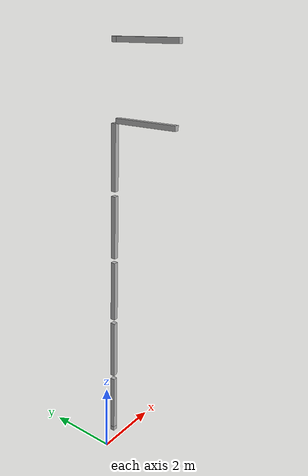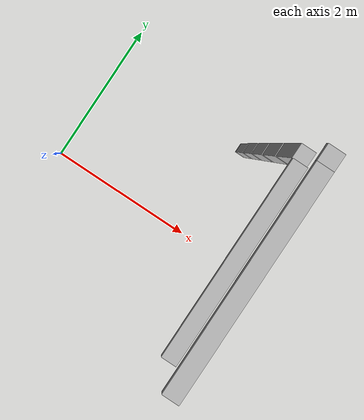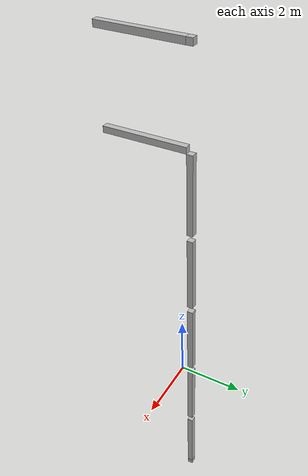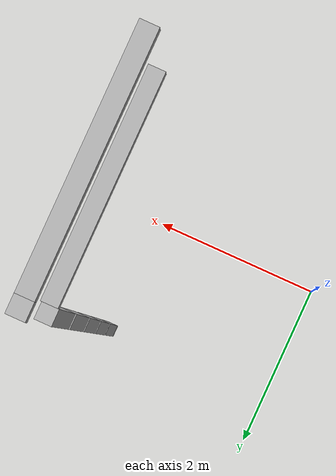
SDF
<sdf version="1.7">
 <world name="default">
  <model name="orthogonal_747_2.000.15_TS">
   <static>1</static>
   <link name="u_link_0_3_4">
    <inertial>
     <mass>1</mass>
     <inertia>
      <ixx>0.166667</ixx>
      <ixy>0</ixy>
      <ixz>0</ixz>
      <iyy>0.166667</iyy>
      <iyz>0</iyz>
      <izz>0.166667</izz>
     </inertia>
    </inertial>
    <pose>8.6 6.45 1.075 0 -0 0</pose>
    <visual name="visual_0">
     <laser_retro>582</laser_retro>
     <geometry><box><size>0.15 1e-06 0.15</size></box></geometry>
     <material>
      <script><name>Gazebo/Grey</name><uri>file://media/materials/scripts/gazebo.material</uri></script>
      <shader type="pixel"><normal_map>__default__</normal_map></shader>
      <ambient>0.678 0.498 0.659 1</ambient>
      <diffuse>0.7 0.7 0.7 1</diffuse>
      <specular>0.01 0.01 0.01 1</specular>
      <emissive>0 0 0 1</emissive>
     </material>
     <pose>0 -0.075 0 0 -0 0</pose>
     <transparency>1</transparency>
    </visual>
    <visual name="visual_1">
     <laser_retro>583</laser_retro>
     <geometry><box><size>0.15 1e-06 0.15</size></box></geometry>
     <material>
      <script><name>Gazebo/Grey</name><uri>file://media/materials/scripts/gazebo.material</uri></script>
      <shader type="pixel"><normal_map>__default__</normal_map></shader>
      <ambient>0.447 0.624 0.812 1</ambient>
      <diffuse>0.7 0.7 0.7 1</diffuse>
      <specular>0.01 0.01 0.01 1</specular>
      <emissive>0 0 0 1</emissive>
     </material>
     <pose>0 0.075 0 0 -0 0</pose>
     <transparency>1</transparency>
    </visual>
    <visual name="visual_2">
     <laser_retro>584</laser_retro>
     <geometry><box><size>0.15 0.15 1e-06</size></box></geometry>
     <material>
      <script><name>Gazebo/Grey</name><uri>file://media/materials/scripts/gazebo.material</uri></script>
      <shader type="pixel"><normal_map>__default__</normal_map></shader>
      <ambient>0.988 0.686 0.243 1</ambient>
      <diffuse>0.7 0.7 0.7 1</diffuse>
      <specular>0.01 0.01 0.01 1</specular>
      <emissive>0 0 0 1</emissive>
     </material>
     <pose>0 0 -0.075 0 -0 0</pose>
     <transparency>1</transparency>
    </visual>
    <visual name="visual_3">
     <laser_retro>585</laser_retro>
     <geometry><box><size>1e-06 0.15 0.15</size></box></geometry>
     <material>
      <script><name>Gazebo/Grey</name><uri>file://media/materials/scripts/gazebo.material</uri></script>
      <shader type="pixel"><normal_map>__default__</normal_map></shader>
      <ambient>0.988 0.914 0.31 1</ambient>
      <diffuse>0.7 0.7 0.7 1</diffuse>
      <specular>0.01 0.01 0.01 1</specular>
      <emissive>0 0 0 1</emissive>
     </material>
     <pose>0.075 0 0 0 -0 0</pose>
     <transparency>1</transparency>
    </visual>
    <visual name="visual_4">
     <laser_retro>586</laser_retro>
     <geometry><box><size>0.15 0.15 1e-06</size></box></geometry>
     <material>
      <script><name>Gazebo/Grey</name><uri>file://media/materials/scripts/gazebo.material</uri></script>
      <shader type="pixel"><normal_map>__default__</normal_map></shader>
      <ambient>0.937 0.161 0.161 1</ambient>
      <diffuse>0.7 0.7 0.7 1</diffuse>
      <specular>0.01 0.01 0.01 1</specular>
      <emissive>0 0 0 1</emissive>
     </material>
     <pose>0 0 0.075 0 -0 0</pose>
     <transparency>1</transparency>
    </visual>
    <visual name="visual_5">
     <laser_retro>587</laser_retro>
     <geometry><box><size>1e-06 0.15 0.15</size></box></geometry>
     <material>
      <script><name>Gazebo/Grey</name><uri>file://media/materials/scripts/gazebo.material</uri></script>
      <shader type="pixel"><normal_map>__default__</normal_map></shader>
      <ambient>0.541 0.886 0.204 1</ambient>
      <diffuse>0.7 0.7 0.7 1</diffuse>
      <specular>0.01 0.01 0.01 1</specular>
      <emissive>0 0 0 1</emissive>
     </material>
     <pose>-0.075 0 0 0 -0 0</pose>
     <transparency>1</transparency>
    </visual>
    <visual name="visual_texture">
     <geometry><box><size>0.149985 0.149985 0.149985</size></box></geometry>
     <material>
      <script>
       <uri>model://BASE_MODELS/simple_block_v2_textured/materials/scripts</uri>
       <uri>model://BASE_MODELS/simple_block_v2_textured/materials/textures</uri>
       <name>metal</name>
      </script>
     </material>
     <laser_retro>588</laser_retro>
    </visual>
    <collision name="collision">
     <geometry><box><size>0.15 0.15 0.15</size></box></geometry>
     <surface>
      <friction>
       <ode><mu>1</mu><mu2>1</mu2><fdir1>0 0 0</fdir1><slip1>0</slip1><slip2>0</slip2></ode>
       <torsional>
        <coefficient>1</coefficient>
        <patch_radius>0</patch_radius>
        <surface_radius>0</surface_radius>
        <use_patch_radius>1</use_patch_radius>
        <ode><slip>0</slip></ode>
       </torsional>
      </friction>
      <bounce><restitution_coefficient>0</restitution_coefficient><threshold>1e+06</threshold></bounce>
      <contact>
       <collide_without_contact>0</collide_without_contact>
       <collide_without_contact_bitmask>1</collide_without_contact_bitmask>
       <collide_bitmask>1</collide_bitmask>
       <ode>
        <soft_cfm>0</soft_cfm>
        <soft_erp>0.2</soft_erp>
        <kp>1e+13</kp>
        <kd>1</kd>
        <max_vel>0.01</max_vel>
        <min_depth>0</min_depth>
       </ode>
       <bullet>
        <split_impulse>1</split_impulse>
        <split_impulse_penetration_threshold>-0.01</split_impulse_penetration_threshold>
        <soft_cfm>0</soft_cfm>
        <soft_erp>0.2</soft_erp>
        <kp>1e+13</kp>
        <kd>1</kd>
       </bullet>
      </contact>
     </surface>
    </collision>
   </link>
   <link name="z_link_1_3_4">
    <inertial>
     <mass>1</mass>
     <inertia>
      <ixx>0.166667</ixx>
      <ixy>0</ixy>
      <ixz>0</ixz>
      <iyy>0.166667</iyy>
      <iyz>0</iyz>
      <izz>0.166667</izz>
     </inertia>
    </inertial>
    <pose>8.6 6.45 2.15 0 -0 0</pose>
    <visual name="visual_0">
     <laser_retro>1422</laser_retro>
     <geometry><box><size>0.15 1e-06 2</size></box></geometry>
     <material>
      <script><name>Gazebo/Grey</name><uri>file://media/materials/scripts/gazebo.material</uri></script>
      <shader type="pixel"><normal_map>__default__</normal_map></shader>
      <ambient>0.678 0.498 0.659 1</ambient>
      <diffuse>0.7 0.7 0.7 1</diffuse>
      <specular>0.01 0.01 0.01 1</specular>
      <emissive>0 0 0 1</emissive>
     </material>
     <pose>0 -0.075 0 0 -0 0</pose>
     <transparency>1</transparency>
    </visual>
    <visual name="visual_1">
     <laser_retro>1423</laser_retro>
     <geometry><box><size>0.15 1e-06 2</size></box></geometry>
     <material>
      <script><name>Gazebo/Grey</name><uri>file://media/materials/scripts/gazebo.material</uri></script>
      <shader type="pixel"><normal_map>__default__</normal_map></shader>
      <ambient>0.447 0.624 0.812 1</ambient>
      <diffuse>0.7 0.7 0.7 1</diffuse>
      <specular>0.01 0.01 0.01 1</specular>
      <emissive>0 0 0 1</emissive>
     </material>
     <pose>0 0.075 0 0 -0 0</pose>
     <transparency>1</transparency>
    </visual>
    <visual name="visual_2">
     <laser_retro>1424</laser_retro>
     <geometry><box><size>0.15 0.15 1e-06</size></box></geometry>
     <material>
      <script><name>Gazebo/Grey</name><uri>file://media/materials/scripts/gazebo.material</uri></script>
      <shader type="pixel"><normal_map>__default__</normal_map></shader>
      <ambient>0.988 0.686 0.243 1</ambient>
      <diffuse>0.7 0.7 0.7 1</diffuse>
      <specular>0.01 0.01 0.01 1</specular>
      <emissive>0 0 0 1</emissive>
     </material>
     <pose>0 0 -1 0 -0 0</pose>
     <transparency>1</transparency>
    </visual>
    <visual name="visual_3">
     <laser_retro>1425</laser_retro>
     <geometry><box><size>1e-06 0.15 2</size></box></geometry>
     <material>
      <script><name>Gazebo/Grey</name><uri>file://media/materials/scripts/gazebo.material</uri></script>
      <shader type="pixel"><normal_map>__default__</normal_map></shader>
      <ambient>0.988 0.914 0.31 1</ambient>
      <diffuse>0.7 0.7 0.7 1</diffuse>
      <specular>0.01 0.01 0.01 1</specular>
      <emissive>0 0 0 1</emissive>
     </material>
     <pose>0.075 0 0 0 -0 0</pose>
     <transparency>1</transparency>
    </visual>
    <visual name="visual_4">
     <laser_retro>1426</laser_retro>
     <geometry><box><size>0.15 0.15 1e-06</size></box></geometry>
     <material>
      <script><name>Gazebo/Grey</name><uri>file://media/materials/scripts/gazebo.material</uri></script>
      <shader type="pixel"><normal_map>__default__</normal_map></shader>
      <ambient>0.937 0.161 0.161 1</ambient>
      <diffuse>0.7 0.7 0.7 1</diffuse>
      <specular>0.01 0.01 0.01 1</specular>
      <emissive>0 0 0 1</emissive>
     </material>
     <pose>0 0 1 0 -0 0</pose>
     <transparency>1</transparency>
    </visual>
    <visual name="visual_5">
     <laser_retro>1427</laser_retro>
     <geometry><box><size>1e-06 0.15 2</size></box></geometry>
     <material>
      <script><name>Gazebo/Grey</name><uri>file://media/materials/scripts/gazebo.material</uri></script>
      <shader type="pixel"><normal_map>__default__</normal_map></shader>
      <ambient>0.541 0.886 0.204 1</ambient>
      <diffuse>0.7 0.7 0.7 1</diffuse>
      <specular>0.01 0.01 0.01 1</specular>
      <emissive>0 0 0 1</emissive>
     </material>
     <pose>-0.075 0 0 0 -0 0</pose>
     <transparency>1</transparency>
    </visual>
    <visual name="visual_texture">
     <geometry><box><size>0.149985 0.149985 1.9998</size></box></geometry>
     <material>
      <script>
       <uri>model://BASE_MODELS/simple_block_v2_textured/materials/scripts</uri>
       <uri>model://BASE_MODELS/simple_block_v2_textured/materials/textures</uri>
       <name>metal</name>
      </script>
     </material>
     <laser_retro>1428</laser_retro>
    </visual>
    <collision name="collision">
     <geometry><box><size>0.15 0.15 2</size></box></geometry>
     <surface>
      <friction>
       <ode><mu>1</mu><mu2>1</mu2><fdir1>0 0 0</fdir1><slip1>0</slip1><slip2>0</slip2></ode>
       <torsional>
        <coefficient>1</coefficient>
        <patch_radius>0</patch_radius>
        <surface_radius>0</surface_radius>
        <use_patch_radius>1</use_patch_radius>
        <ode><slip>0</slip></ode>
       </torsional>
      </friction>
      <bounce><restitution_coefficient>0</restitution_coefficient><threshold>1e+06</threshold></bounce>
      <contact>
       <collide_without_contact>0</collide_without_contact>
       <collide_without_contact_bitmask>1</collide_without_contact_bitmask>
       <collide_bitmask>1</collide_bitmask>
       <ode>
        <soft_cfm>0</soft_cfm>
        <soft_erp>0.2</soft_erp>
        <kp>1e+13</kp>
        <kd>1</kd>
        <max_vel>0.01</max_vel>
        <min_depth>0</min_depth>
       </ode>
       <bullet>
        <split_impulse>1</split_impulse>
        <split_impulse_penetration_threshold>-0.01</split_impulse_penetration_threshold>
        <soft_cfm>0</soft_cfm>
        <soft_erp>0.2</soft_erp>
        <kp>1e+13</kp>
        <kd>1</kd>
       </bullet>
      </contact>
     </surface>
    </collision>
   </link>
   <link name="z_link_2_3_4">
    <inertial>
     <mass>1</mass>
     <inertia>
      <ixx>0.166667</ixx>
      <ixy>0</ixy>
      <ixz>0</ixz>
      <iyy>0.166667</iyy>
      <iyz>0</iyz>
      <izz>0.166667</izz>
     </inertia>
    </inertial>
    <pose>8.6 6.45 4.3 0 -0 0</pose>
    <visual name="visual_0">
     <laser_retro>2325</laser_retro>
     <geometry><box><size>0.15 1e-06 2</size></box></geometry>
     <material>
      <script><name>Gazebo/Grey</name><uri>file://media/materials/scripts/gazebo.material</uri></script>
      <shader type="pixel"><normal_map>__default__</normal_map></shader>
      <ambient>0.678 0.498 0.659 1</ambient>
      <diffuse>0.7 0.7 0.7 1</diffuse>
      <specular>0.01 0.01 0.01 1</specular>
      <emissive>0 0 0 1</emissive>
     </material>
     <pose>0 -0.075 0 0 -0 0</pose>
     <transparency>1</transparency>
    </visual>
    <visual name="visual_1">
     <laser_retro>2326</laser_retro>
     <geometry><box><size>0.15 1e-06 2</size></box></geometry>
     <material>
      <script><name>Gazebo/Grey</name><uri>file://media/materials/scripts/gazebo.material</uri></script>
      <shader type="pixel"><normal_map>__default__</normal_map></shader>
      <ambient>0.447 0.624 0.812 1</ambient>
      <diffuse>0.7 0.7 0.7 1</diffuse>
      <specular>0.01 0.01 0.01 1</specular>
      <emissive>0 0 0 1</emissive>
     </material>
     <pose>0 0.075 0 0 -0 0</pose>
     <transparency>1</transparency>
    </visual>
    <visual name="visual_2">
     <laser_retro>2327</laser_retro>
     <geometry><box><size>0.15 0.15 1e-06</size></box></geometry>
     <material>
      <script><name>Gazebo/Grey</name><uri>file://media/materials/scripts/gazebo.material</uri></script>
      <shader type="pixel"><normal_map>__default__</normal_map></shader>
      <ambient>0.988 0.686 0.243 1</ambient>
      <diffuse>0.7 0.7 0.7 1</diffuse>
      <specular>0.01 0.01 0.01 1</specular>
      <emissive>0 0 0 1</emissive>
     </material>
     <pose>0 0 -1 0 -0 0</pose>
     <transparency>1</transparency>
    </visual>
    <visual name="visual_3">
     <laser_retro>2328</laser_retro>
     <geometry><box><size>1e-06 0.15 2</size></box></geometry>
     <material>
      <script><name>Gazebo/Grey</name><uri>file://media/materials/scripts/gazebo.material</uri></script>
      <shader type="pixel"><normal_map>__default__</normal_map></shader>
      <ambient>0.988 0.914 0.31 1</ambient>
      <diffuse>0.7 0.7 0.7 1</diffuse>
      <specular>0.01 0.01 0.01 1</specular>
      <emissive>0 0 0 1</emissive>
     </material>
     <pose>0.075 0 0 0 -0 0</pose>
     <transparency>1</transparency>
    </visual>
    <visual name="visual_4">
     <laser_retro>2329</laser_retro>
     <geometry><box><size>0.15 0.15 1e-06</size></box></geometry>
     <material>
      <script><name>Gazebo/Grey</name><uri>file://media/materials/scripts/gazebo.material</uri></script>
      <shader type="pixel"><normal_map>__default__</normal_map></shader>
      <ambient>0.937 0.161 0.161 1</ambient>
      <diffuse>0.7 0.7 0.7 1</diffuse>
      <specular>0.01 0.01 0.01 1</specular>
      <emissive>0 0 0 1</emissive>
     </material>
     <pose>0 0 1 0 -0 0</pose>
     <transparency>1</transparency>
    </visual>
    <visual name="visual_5">
     <laser_retro>2330</laser_retro>
     <geometry><box><size>1e-06 0.15 2</size></box></geometry>
     <material>
      <script><name>Gazebo/Grey</name><uri>file://media/materials/scripts/gazebo.material</uri></script>
      <shader type="pixel"><normal_map>__default__</normal_map></shader>
      <ambient>0.541 0.886 0.204 1</ambient>
      <diffuse>0.7 0.7 0.7 1</diffuse>
      <specular>0.01 0.01 0.01 1</specular>
      <emissive>0 0 0 1</emissive>
     </material>
     <pose>-0.075 0 0 0 -0 0</pose>
     <transparency>1</transparency>
    </visual>
    <visual name="visual_texture">
     <geometry><box><size>0.149985 0.149985 1.9998</size></box></geometry>
     <material>
      <script>
       <uri>model://BASE_MODELS/simple_block_v2_textured/materials/scripts</uri>
       <uri>model://BASE_MODELS/simple_block_v2_textured/materials/textures</uri>
       <name>metal</name>
      </script>
     </material>
     <laser_retro>2331</laser_retro>
    </visual>
    <collision name="collision">
     <geometry><box><size>0.15 0.15 2</size></box></geometry>
     <surface>
      <friction>
       <ode><mu>1</mu><mu2>1</mu2><fdir1>0 0 0</fdir1><slip1>0</slip1><slip2>0</slip2></ode>
       <torsional>
        <coefficient>1</coefficient>
        <patch_radius>0</patch_radius>
        <surface_radius>0</surface_radius>
        <use_patch_radius>1</use_patch_radius>
        <ode><slip>0</slip></ode>
       </torsional>
      </friction>
      <bounce><restitution_coefficient>0</restitution_coefficient><threshold>1e+06</threshold></bounce>
      <contact>
       <collide_without_contact>0</collide_without_contact>
       <collide_without_contact_bitmask>1</collide_without_contact_bitmask>
       <collide_bitmask>1</collide_bitmask>
       <ode>
        <soft_cfm>0</soft_cfm>
        <soft_erp>0.2</soft_erp>
        <kp>1e+13</kp>
        <kd>1</kd>
        <max_vel>0.01</max_vel>
        <min_depth>0</min_depth>
       </ode>
       <bullet>
        <split_impulse>1</split_impulse>
        <split_impulse_penetration_threshold>-0.01</split_impulse_penetration_threshold>
        <soft_cfm>0</soft_cfm>
        <soft_erp>0.2</soft_erp>
        <kp>1e+13</kp>
        <kd>1</kd>
       </bullet>
      </contact>
     </surface>
    </collision>
   </link>
   <link name="z_link_3_3_4">
    <inertial>
     <mass>1</mass>
     <inertia>
      <ixx>0.166667</ixx>
      <ixy>0</ixy>
      <ixz>0</ixz>
      <iyy>0.166667</iyy>
      <iyz>0</iyz>
      <izz>0.166667</izz>
     </inertia>
    </inertial>
    <pose>8.6 6.45 6.45 0 -0 0</pose>
    <visual name="visual_0">
     <laser_retro>3228</laser_retro>
     <geometry><box><size>0.15 1e-06 2</size></box></geometry>
     <material>
      <script><name>Gazebo/Grey</name><uri>file://media/materials/scripts/gazebo.material</uri></script>
      <shader type="pixel"><normal_map>__default__</normal_map></shader>
      <ambient>0.678 0.498 0.659 1</ambient>
      <diffuse>0.7 0.7 0.7 1</diffuse>
      <specular>0.01 0.01 0.01 1</specular>
      <emissive>0 0 0 1</emissive>
     </material>
     <pose>0 -0.075 0 0 -0 0</pose>
     <transparency>1</transparency>
    </visual>
    <visual name="visual_1">
     <laser_retro>3229</laser_retro>
     <geometry><box><size>0.15 1e-06 2</size></box></geometry>
     <material>
      <script><name>Gazebo/Grey</name><uri>file://media/materials/scripts/gazebo.material</uri></script>
      <shader type="pixel"><normal_map>__default__</normal_map></shader>
      <ambient>0.447 0.624 0.812 1</ambient>
      <diffuse>0.7 0.7 0.7 1</diffuse>
      <specular>0.01 0.01 0.01 1</specular>
      <emissive>0 0 0 1</emissive>
     </material>
     <pose>0 0.075 0 0 -0 0</pose>
     <transparency>1</transparency>
    </visual>
    <visual name="visual_2">
     <laser_retro>3230</laser_retro>
     <geometry><box><size>0.15 0.15 1e-06</size></box></geometry>
     <material>
      <script><name>Gazebo/Grey</name><uri>file://media/materials/scripts/gazebo.material</uri></script>
      <shader type="pixel"><normal_map>__default__</normal_map></shader>
      <ambient>0.988 0.686 0.243 1</ambient>
      <diffuse>0.7 0.7 0.7 1</diffuse>
      <specular>0.01 0.01 0.01 1</specular>
      <emissive>0 0 0 1</emissive>
     </material>
     <pose>0 0 -1 0 -0 0</pose>
     <transparency>1</transparency>
    </visual>
    <visual name="visual_3">
     <laser_retro>3231</laser_retro>
     <geometry><box><size>1e-06 0.15 2</size></box></geometry>
     <material>
      <script><name>Gazebo/Grey</name><uri>file://media/materials/scripts/gazebo.material</uri></script>
      <shader type="pixel"><normal_map>__default__</normal_map></shader>
      <ambient>0.988 0.914 0.31 1</ambient>
      <diffuse>0.7 0.7 0.7 1</diffuse>
      <specular>0.01 0.01 0.01 1</specular>
      <emissive>0 0 0 1</emissive>
     </material>
     <pose>0.075 0 0 0 -0 0</pose>
     <transparency>1</transparency>
    </visual>
    <visual name="visual_4">
     <laser_retro>3232</laser_retro>
     <geometry><box><size>0.15 0.15 1e-06</size></box></geometry>
     <material>
      <script><name>Gazebo/Grey</name><uri>file://media/materials/scripts/gazebo.material</uri></script>
      <shader type="pixel"><normal_map>__default__</normal_map></shader>
      <ambient>0.937 0.161 0.161 1</ambient>
      <diffuse>0.7 0.7 0.7 1</diffuse>
      <specular>0.01 0.01 0.01 1</specular>
      <emissive>0 0 0 1</emissive>
     </material>
     <pose>0 0 1 0 -0 0</pose>
     <transparency>1</transparency>
    </visual>
    <visual name="visual_5">
     <laser_retro>3233</laser_retro>
     <geometry><box><size>1e-06 0.15 2</size></box></geometry>
     <material>
      <script><name>Gazebo/Grey</name><uri>file://media/materials/scripts/gazebo.material</uri></script>
      <shader type="pixel"><normal_map>__default__</normal_map></shader>
      <ambient>0.541 0.886 0.204 1</ambient>
      <diffuse>0.7 0.7 0.7 1</diffuse>
      <specular>0.01 0.01 0.01 1</specular>
      <emissive>0 0 0 1</emissive>
     </material>
     <pose>-0.075 0 0 0 -0 0</pose>
     <transparency>1</transparency>
    </visual>
    <visual name="visual_texture">
     <geometry><box><size>0.149985 0.149985 1.9998</size></box></geometry>
     <material>
      <script>
       <uri>model://BASE_MODELS/simple_block_v2_textured/materials/scripts</uri>
       <uri>model://BASE_MODELS/simple_block_v2_textured/materials/textures</uri>
       <name>metal</name>
      </script>
     </material>
     <laser_retro>3234</laser_retro>
    </visual>
    <collision name="collision">
     <geometry><box><size>0.15 0.15 2</size></box></geometry>
     <surface>
      <friction>
       <ode><mu>1</mu><mu2>1</mu2><fdir1>0 0 0</fdir1><slip1>0</slip1><slip2>0</slip2></ode>
       <torsional>
        <coefficient>1</coefficient>
        <patch_radius>0</patch_radius>
        <surface_radius>0</surface_radius>
        <use_patch_radius>1</use_patch_radius>
        <ode><slip>0</slip></ode>
       </torsional>
      </friction>
      <bounce><restitution_coefficient>0</restitution_coefficient><threshold>1e+06</threshold></bounce>
      <contact>
       <collide_without_contact>0</collide_without_contact>
       <collide_without_contact_bitmask>1</collide_without_contact_bitmask>
       <collide_bitmask>1</collide_bitmask>
       <ode>
        <soft_cfm>0</soft_cfm>
        <soft_erp>0.2</soft_erp>
        <kp>1e+13</kp>
        <kd>1</kd>
        <max_vel>0.01</max_vel>
        <min_depth>0</min_depth>
       </ode>
       <bullet>
        <split_impulse>1</split_impulse>
        <split_impulse_penetration_threshold>-0.01</split_impulse_penetration_threshold>
        <soft_cfm>0</soft_cfm>
        <soft_erp>0.2</soft_erp>
        <kp>1e+13</kp>
        <kd>1</kd>
       </bullet>
      </contact>
     </surface>
    </collision>
   </link>
   <link name="z_link_4_3_4">
    <inertial>
     <mass>1</mass>
     <inertia>
      <ixx>0.166667</ixx>
      <ixy>0</ixy>
      <ixz>0</ixz>
      <iyy>0.166667</iyy>
      <iyz>0</iyz>
      <izz>0.166667</izz>
     </inertia>
    </inertial>
    <pose>8.6 6.45 8.6 0 -0 0</pose>
    <visual name="visual_0">
     <laser_retro>4131</laser_retro>
     <geometry><box><size>0.15 1e-06 2</size></box></geometry>
     <material>
      <script><name>Gazebo/Grey</name><uri>file://media/materials/scripts/gazebo.material</uri></script>
      <shader type="pixel"><normal_map>__default__</normal_map></shader>
      <ambient>0.678 0.498 0.659 1</ambient>
      <diffuse>0.7 0.7 0.7 1</diffuse>
      <specular>0.01 0.01 0.01 1</specular>
      <emissive>0 0 0 1</emissive>
     </material>
     <pose>0 -0.075 0 0 -0 0</pose>
     <transparency>1</transparency>
    </visual>
    <visual name="visual_1">
     <laser_retro>4132</laser_retro>
     <geometry><box><size>0.15 1e-06 2</size></box></geometry>
     <material>
      <script><name>Gazebo/Grey</name><uri>file://media/materials/scripts/gazebo.material</uri></script>
      <shader type="pixel"><normal_map>__default__</normal_map></shader>
      <ambient>0.447 0.624 0.812 1</ambient>
      <diffuse>0.7 0.7 0.7 1</diffuse>
      <specular>0.01 0.01 0.01 1</specular>
      <emissive>0 0 0 1</emissive>
     </material>
     <pose>0 0.075 0 0 -0 0</pose>
     <transparency>1</transparency>
    </visual>
    <visual name="visual_2">
     <laser_retro>4133</laser_retro>
     <geometry><box><size>0.15 0.15 1e-06</size></box></geometry>
     <material>
      <script><name>Gazebo/Grey</name><uri>file://media/materials/scripts/gazebo.material</uri></script>
      <shader type="pixel"><normal_map>__default__</normal_map></shader>
      <ambient>0.988 0.686 0.243 1</ambient>
      <diffuse>0.7 0.7 0.7 1</diffuse>
      <specular>0.01 0.01 0.01 1</specular>
      <emissive>0 0 0 1</emissive>
     </material>
     <pose>0 0 -1 0 -0 0</pose>
     <transparency>1</transparency>
    </visual>
    <visual name="visual_3">
     <laser_retro>4134</laser_retro>
     <geometry><box><size>1e-06 0.15 2</size></box></geometry>
     <material>
      <script><name>Gazebo/Grey</name><uri>file://media/materials/scripts/gazebo.material</uri></script>
      <shader type="pixel"><normal_map>__default__</normal_map></shader>
      <ambient>0.988 0.914 0.31 1</ambient>
      <diffuse>0.7 0.7 0.7 1</diffuse>
      <specular>0.01 0.01 0.01 1</specular>
      <emissive>0 0 0 1</emissive>
     </material>
     <pose>0.075 0 0 0 -0 0</pose>
     <transparency>1</transparency>
    </visual>
    <visual name="visual_4">
     <laser_retro>4135</laser_retro>
     <geometry><box><size>0.15 0.15 1e-06</size></box></geometry>
     <material>
      <script><name>Gazebo/Grey</name><uri>file://media/materials/scripts/gazebo.material</uri></script>
      <shader type="pixel"><normal_map>__default__</normal_map></shader>
      <ambient>0.937 0.161 0.161 1</ambient>
      <diffuse>0.7 0.7 0.7 1</diffuse>
      <specular>0.01 0.01 0.01 1</specular>
      <emissive>0 0 0 1</emissive>
     </material>
     <pose>0 0 1 0 -0 0</pose>
     <transparency>1</transparency>
    </visual>
    <visual name="visual_5">
     <laser_retro>4136</laser_retro>
     <geometry><box><size>1e-06 0.15 2</size></box></geometry>
     <material>
      <script><name>Gazebo/Grey</name><uri>file://media/materials/scripts/gazebo.material</uri></script>
      <shader type="pixel"><normal_map>__default__</normal_map></shader>
      <ambient>0.541 0.886 0.204 1</ambient>
      <diffuse>0.7 0.7 0.7 1</diffuse>
      <specular>0.01 0.01 0.01 1</specular>
      <emissive>0 0 0 1</emissive>
     </material>
     <pose>-0.075 0 0 0 -0 0</pose>
     <transparency>1</transparency>
    </visual>
    <visual name="visual_texture">
     <geometry><box><size>0.149985 0.149985 1.9998</size></box></geometry>
     <material>
      <script>
       <uri>model://BASE_MODELS/simple_block_v2_textured/materials/scripts</uri>
       <uri>model://BASE_MODELS/simple_block_v2_textured/materials/textures</uri>
       <name>metal</name>
      </script>
     </material>
     <laser_retro>4137</laser_retro>
    </visual>
    <collision name="collision">
     <geometry><box><size>0.15 0.15 2</size></box></geometry>
     <surface>
      <friction>
       <ode><mu>1</mu><mu2>1</mu2><fdir1>0 0 0</fdir1><slip1>0</slip1><slip2>0</slip2></ode>
       <torsional>
        <coefficient>1</coefficient>
        <patch_radius>0</patch_radius>
        <surface_radius>0</surface_radius>
        <use_patch_radius>1</use_patch_radius>
        <ode><slip>0</slip></ode>
       </torsional>
      </friction>
      <bounce><restitution_coefficient>0</restitution_coefficient><threshold>1e+06</threshold></bounce>
      <contact>
       <collide_without_contact>0</collide_without_contact>
       <collide_without_contact_bitmask>1</collide_without_contact_bitmask>
       <collide_bitmask>1</collide_bitmask>
       <ode>
        <soft_cfm>0</soft_cfm>
        <soft_erp>0.2</soft_erp>
        <kp>1e+13</kp>
        <kd>1</kd>
        <max_vel>0.01</max_vel>
        <min_depth>0</min_depth>
       </ode>
       <bullet>
        <split_impulse>1</split_impulse>
        <split_impulse_penetration_threshold>-0.01</split_impulse_penetration_threshold>
        <soft_cfm>0</soft_cfm>
        <soft_erp>0.2</soft_erp>
        <kp>1e+13</kp>
        <kd>1</kd>
       </bullet>
      </contact>
     </surface>
    </collision>
   </link>
   <link name="y_link_5_2_4">
    <inertial>
     <mass>1</mass>
     <inertia>
      <ixx>0.166667</ixx>
      <ixy>0</ixy>
      <ixz>0</ixz>
      <iyy>0.166667</iyy>
      <iyz>0</iyz>
      <izz>0.166667</izz>
     </inertia>
    </inertial>
    <pose>8.6 5.375 11.825 0 -0 0</pose>
    <visual name="visual_0">
     <laser_retro>4852</laser_retro>
     <geometry><box><size>0.15 1e-06 0.15</size></box></geometry>
     <material>
      <script><name>Gazebo/Grey</name><uri>file://media/materials/scripts/gazebo.material</uri></script>
      <shader type="pixel"><normal_map>__default__</normal_map></shader>
      <ambient>0.678 0.498 0.659 1</ambient>
      <diffuse>0.7 0.7 0.7 1</diffuse>
      <specular>0.01 0.01 0.01 1</specular>
      <emissive>0 0 0 1</emissive>
     </material>
     <pose>0 -1 0 0 -0 0</pose>
     <transparency>1</transparency>
    </visual>
    <visual name="visual_1">
     <laser_retro>4853</laser_retro>
     <geometry><box><size>0.15 1e-06 0.15</size></box></geometry>
     <material>
      <script><name>Gazebo/Grey</name><uri>file://media/materials/scripts/gazebo.material</uri></script>
      <shader type="pixel"><normal_map>__default__</normal_map></shader>
      <ambient>0.447 0.624 0.812 1</ambient>
      <diffuse>0.7 0.7 0.7 1</diffuse>
      <specular>0.01 0.01 0.01 1</specular>
      <emissive>0 0 0 1</emissive>
     </material>
     <pose>0 1 0 0 -0 0</pose>
     <transparency>1</transparency>
    </visual>
    <visual name="visual_2">
     <laser_retro>4854</laser_retro>
     <geometry><box><size>0.15 2 1e-06</size></box></geometry>
     <material>
      <script><name>Gazebo/Grey</name><uri>file://media/materials/scripts/gazebo.material</uri></script>
      <shader type="pixel"><normal_map>__default__</normal_map></shader>
      <ambient>0.988 0.686 0.243 1</ambient>
      <diffuse>0.7 0.7 0.7 1</diffuse>
      <specular>0.01 0.01 0.01 1</specular>
      <emissive>0 0 0 1</emissive>
     </material>
     <pose>0 0 -0.075 0 -0 0</pose>
     <transparency>1</transparency>
    </visual>
    <visual name="visual_3">
     <laser_retro>4855</laser_retro>
     <geometry><box><size>1e-06 2 0.15</size></box></geometry>
     <material>
      <script><name>Gazebo/Grey</name><uri>file://media/materials/scripts/gazebo.material</uri></script>
      <shader type="pixel"><normal_map>__default__</normal_map></shader>
      <ambient>0.988 0.914 0.31 1</ambient>
      <diffuse>0.7 0.7 0.7 1</diffuse>
      <specular>0.01 0.01 0.01 1</specular>
      <emissive>0 0 0 1</emissive>
     </material>
     <pose>0.075 0 0 0 -0 0</pose>
     <transparency>1</transparency>
    </visual>
    <visual name="visual_4">
     <laser_retro>4856</laser_retro>
     <geometry><box><size>0.15 2 1e-06</size></box></geometry>
     <material>
      <script><name>Gazebo/Grey</name><uri>file://media/materials/scripts/gazebo.material</uri></script>
      <shader type="pixel"><normal_map>__default__</normal_map></shader>
      <ambient>0.937 0.161 0.161 1</ambient>
      <diffuse>0.7 0.7 0.7 1</diffuse>
      <specular>0.01 0.01 0.01 1</specular>
      <emissive>0 0 0 1</emissive>
     </material>
     <pose>0 0 0.075 0 -0 0</pose>
     <transparency>1</transparency>
    </visual>
    <visual name="visual_5">
     <laser_retro>4857</laser_retro>
     <geometry><box><size>1e-06 2 0.15</size></box></geometry>
     <material>
      <script><name>Gazebo/Grey</name><uri>file://media/materials/scripts/gazebo.material</uri></script>
      <shader type="pixel"><normal_map>__default__</normal_map></shader>
      <ambient>0.541 0.886 0.204 1</ambient>
      <diffuse>0.7 0.7 0.7 1</diffuse>
      <specular>0.01 0.01 0.01 1</specular>
      <emissive>0 0 0 1</emissive>
     </material>
     <pose>-0.075 0 0 0 -0 0</pose>
     <transparency>1</transparency>
    </visual>
    <visual name="visual_texture">
     <geometry><box><size>0.149985 1.9998 0.149985</size></box></geometry>
     <material>
      <script>
       <uri>model://BASE_MODELS/simple_block_v2_textured/materials/scripts</uri>
       <uri>model://BASE_MODELS/simple_block_v2_textured/materials/textures</uri>
       <name>metal</name>
      </script>
     </material>
     <laser_retro>4858</laser_retro>
    </visual>
    <collision name="collision">
     <geometry><box><size>0.15 2 0.15</size></box></geometry>
     <surface>
      <friction>
       <ode><mu>1</mu><mu2>1</mu2><fdir1>0 0 0</fdir1><slip1>0</slip1><slip2>0</slip2></ode>
       <torsional>
        <coefficient>1</coefficient>
        <patch_radius>0</patch_radius>
        <surface_radius>0</surface_radius>
        <use_patch_radius>1</use_patch_radius>
        <ode><slip>0</slip></ode>
       </torsional>
      </friction>
      <bounce><restitution_coefficient>0</restitution_coefficient><threshold>1e+06</threshold></bounce>
      <contact>
       <collide_without_contact>0</collide_without_contact>
       <collide_without_contact_bitmask>1</collide_without_contact_bitmask>
       <collide_bitmask>1</collide_bitmask>
       <ode>
        <soft_cfm>0</soft_cfm>
        <soft_erp>0.2</soft_erp>
        <kp>1e+13</kp>
        <kd>1</kd>
        <max_vel>0.01</max_vel>
        <min_depth>0</min_depth>
       </ode>
       <bullet>
        <split_impulse>1</split_impulse>
        <split_impulse_penetration_threshold>-0.01</split_impulse_penetration_threshold>
        <soft_cfm>0</soft_cfm>
        <soft_erp>0.2</soft_erp>
        <kp>1e+13</kp>
        <kd>1</kd>
       </bullet>
      </contact>
     </surface>
    </collision>
   </link>
   <link name="z_link_5_3_4">
    <inertial>
     <mass>1</mass>
     <inertia>
      <ixx>0.166667</ixx>
      <ixy>0</ixy>
      <ixz>0</ixz>
      <iyy>0.166667</iyy>
      <iyz>0</iyz>
      <izz>0.166667</izz>
     </inertia>
    </inertial>
    <pose>8.6 6.45 10.75 0 -0 0</pose>
    <visual name="visual_0">
     <laser_retro>5034</laser_retro>
     <geometry><box><size>0.15 1e-06 2</size></box></geometry>
     <material>
      <script><name>Gazebo/Grey</name><uri>file://media/materials/scripts/gazebo.material</uri></script>
      <shader type="pixel"><normal_map>__default__</normal_map></shader>
      <ambient>0.678 0.498 0.659 1</ambient>
      <diffuse>0.7 0.7 0.7 1</diffuse>
      <specular>0.01 0.01 0.01 1</specular>
      <emissive>0 0 0 1</emissive>
     </material>
     <pose>0 -0.075 0 0 -0 0</pose>
     <transparency>1</transparency>
    </visual>
    <visual name="visual_1">
     <laser_retro>5035</laser_retro>
     <geometry><box><size>0.15 1e-06 2</size></box></geometry>
     <material>
      <script><name>Gazebo/Grey</name><uri>file://media/materials/scripts/gazebo.material</uri></script>
      <shader type="pixel"><normal_map>__default__</normal_map></shader>
      <ambient>0.447 0.624 0.812 1</ambient>
      <diffuse>0.7 0.7 0.7 1</diffuse>
      <specular>0.01 0.01 0.01 1</specular>
      <emissive>0 0 0 1</emissive>
     </material>
     <pose>0 0.075 0 0 -0 0</pose>
     <transparency>1</transparency>
    </visual>
    <visual name="visual_2">
     <laser_retro>5036</laser_retro>
     <geometry><box><size>0.15 0.15 1e-06</size></box></geometry>
     <material>
      <script><name>Gazebo/Grey</name><uri>file://media/materials/scripts/gazebo.material</uri></script>
      <shader type="pixel"><normal_map>__default__</normal_map></shader>
      <ambient>0.988 0.686 0.243 1</ambient>
      <diffuse>0.7 0.7 0.7 1</diffuse>
      <specular>0.01 0.01 0.01 1</specular>
      <emissive>0 0 0 1</emissive>
     </material>
     <pose>0 0 -1 0 -0 0</pose>
     <transparency>1</transparency>
    </visual>
    <visual name="visual_3">
     <laser_retro>5037</laser_retro>
     <geometry><box><size>1e-06 0.15 2</size></box></geometry>
     <material>
      <script><name>Gazebo/Grey</name><uri>file://media/materials/scripts/gazebo.material</uri></script>
      <shader type="pixel"><normal_map>__default__</normal_map></shader>
      <ambient>0.988 0.914 0.31 1</ambient>
      <diffuse>0.7 0.7 0.7 1</diffuse>
      <specular>0.01 0.01 0.01 1</specular>
      <emissive>0 0 0 1</emissive>
     </material>
     <pose>0.075 0 0 0 -0 0</pose>
     <transparency>1</transparency>
    </visual>
    <visual name="visual_4">
     <laser_retro>5038</laser_retro>
     <geometry><box><size>0.15 0.15 1e-06</size></box></geometry>
     <material>
      <script><name>Gazebo/Grey</name><uri>file://media/materials/scripts/gazebo.material</uri></script>
      <shader type="pixel"><normal_map>__default__</normal_map></shader>
      <ambient>0.937 0.161 0.161 1</ambient>
      <diffuse>0.7 0.7 0.7 1</diffuse>
      <specular>0.01 0.01 0.01 1</specular>
      <emissive>0 0 0 1</emissive>
     </material>
     <pose>0 0 1 0 -0 0</pose>
     <transparency>1</transparency>
    </visual>
    <visual name="visual_5">
     <laser_retro>5039</laser_retro>
     <geometry><box><size>1e-06 0.15 2</size></box></geometry>
     <material>
      <script><name>Gazebo/Grey</name><uri>file://media/materials/scripts/gazebo.material</uri></script>
      <shader type="pixel"><normal_map>__default__</normal_map></shader>
      <ambient>0.541 0.886 0.204 1</ambient>
      <diffuse>0.7 0.7 0.7 1</diffuse>
      <specular>0.01 0.01 0.01 1</specular>
      <emissive>0 0 0 1</emissive>
     </material>
     <pose>-0.075 0 0 0 -0 0</pose>
     <transparency>1</transparency>
    </visual>
    <visual name="visual_texture">
     <geometry><box><size>0.149985 0.149985 1.9998</size></box></geometry>
     <material>
      <script>
       <uri>model://BASE_MODELS/simple_block_v2_textured/materials/scripts</uri>
       <uri>model://BASE_MODELS/simple_block_v2_textured/materials/textures</uri>
       <name>metal</name>
      </script>
     </material>
     <laser_retro>5040</laser_retro>
    </visual>
    <collision name="collision">
     <geometry><box><size>0.15 0.15 2</size></box></geometry>
     <surface>
      <friction>
       <ode><mu>1</mu><mu2>1</mu2><fdir1>0 0 0</fdir1><slip1>0</slip1><slip2>0</slip2></ode>
       <torsional>
        <coefficient>1</coefficient>
        <patch_radius>0</patch_radius>
        <surface_radius>0</surface_radius>
        <use_patch_radius>1</use_patch_radius>
        <ode><slip>0</slip></ode>
       </torsional>
      </friction>
      <bounce><restitution_coefficient>0</restitution_coefficient><threshold>1e+06</threshold></bounce>
      <contact>
       <collide_without_contact>0</collide_without_contact>
       <collide_without_contact_bitmask>1</collide_without_contact_bitmask>
       <collide_bitmask>1</collide_bitmask>
       <ode>
        <soft_cfm>0</soft_cfm>
        <soft_erp>0.2</soft_erp>
        <kp>1e+13</kp>
        <kd>1</kd>
        <max_vel>0.01</max_vel>
        <min_depth>0</min_depth>
       </ode>
       <bullet>
        <split_impulse>1</split_impulse>
        <split_impulse_penetration_threshold>-0.01</split_impulse_penetration_threshold>
        <soft_cfm>0</soft_cfm>
        <soft_erp>0.2</soft_erp>
        <kp>1e+13</kp>
        <kd>1</kd>
       </bullet>
      </contact>
     </surface>
    </collision>
   </link>
   <link name="y_link_6_2_4">
    <inertial>
     <mass>1</mass>
     <inertia>
      <ixx>0.166667</ixx>
      <ixy>0</ixy>
      <ixz>0</ixz>
      <iyy>0.166667</iyy>
      <iyz>0</iyz>
      <izz>0.166667</izz>
     </inertia>
    </inertial>
    <pose>8.6 5.375 13.975 0 -0 0</pose>
    <visual name="visual_0">
     <laser_retro>5818</laser_retro>
     <geometry><box><size>0.15 1e-06 0.15</size></box></geometry>
     <material>
      <script><name>Gazebo/Grey</name><uri>file://media/materials/scripts/gazebo.material</uri></script>
      <shader type="pixel"><normal_map>__default__</normal_map></shader>
      <ambient>0.678 0.498 0.659 1</ambient>
      <diffuse>0.7 0.7 0.7 1</diffuse>
      <specular>0.01 0.01 0.01 1</specular>
      <emissive>0 0 0 1</emissive>
     </material>
     <pose>0 -1 0 0 -0 0</pose>
     <transparency>1</transparency>
    </visual>
    <visual name="visual_1">
     <laser_retro>5819</laser_retro>
     <geometry><box><size>0.15 1e-06 0.15</size></box></geometry>
     <material>
      <script><name>Gazebo/Grey</name><uri>file://media/materials/scripts/gazebo.material</uri></script>
      <shader type="pixel"><normal_map>__default__</normal_map></shader>
      <ambient>0.447 0.624 0.812 1</ambient>
      <diffuse>0.7 0.7 0.7 1</diffuse>
      <specular>0.01 0.01 0.01 1</specular>
      <emissive>0 0 0 1</emissive>
     </material>
     <pose>0 1 0 0 -0 0</pose>
     <transparency>1</transparency>
    </visual>
    <visual name="visual_2">
     <laser_retro>5820</laser_retro>
     <geometry><box><size>0.15 2 1e-06</size></box></geometry>
     <material>
      <script><name>Gazebo/Grey</name><uri>file://media/materials/scripts/gazebo.material</uri></script>
      <shader type="pixel"><normal_map>__default__</normal_map></shader>
      <ambient>0.988 0.686 0.243 1</ambient>
      <diffuse>0.7 0.7 0.7 1</diffuse>
      <specular>0.01 0.01 0.01 1</specular>
      <emissive>0 0 0 1</emissive>
     </material>
     <pose>0 0 -0.075 0 -0 0</pose>
     <transparency>1</transparency>
    </visual>
    <visual name="visual_3">
     <laser_retro>5821</laser_retro>
     <geometry><box><size>1e-06 2 0.15</size></box></geometry>
     <material>
      <script><name>Gazebo/Grey</name><uri>file://media/materials/scripts/gazebo.material</uri></script>
      <shader type="pixel"><normal_map>__default__</normal_map></shader>
      <ambient>0.988 0.914 0.31 1</ambient>
      <diffuse>0.7 0.7 0.7 1</diffuse>
      <specular>0.01 0.01 0.01 1</specular>
      <emissive>0 0 0 1</emissive>
     </material>
     <pose>0.075 0 0 0 -0 0</pose>
     <transparency>1</transparency>
    </visual>
    <visual name="visual_4">
     <laser_retro>5822</laser_retro>
     <geometry><box><size>0.15 2 1e-06</size></box></geometry>
     <material>
      <script><name>Gazebo/Grey</name><uri>file://media/materials/scripts/gazebo.material</uri></script>
      <shader type="pixel"><normal_map>__default__</normal_map></shader>
      <ambient>0.937 0.161 0.161 1</ambient>
      <diffuse>0.7 0.7 0.7 1</diffuse>
      <specular>0.01 0.01 0.01 1</specular>
      <emissive>0 0 0 1</emissive>
     </material>
     <pose>0 0 0.075 0 -0 0</pose>
     <transparency>1</transparency>
    </visual>
    <visual name="visual_5">
     <laser_retro>5823</laser_retro>
     <geometry><box><size>1e-06 2 0.15</size></box></geometry>
     <material>
      <script><name>Gazebo/Grey</name><uri>file://media/materials/scripts/gazebo.material</uri></script>
      <shader type="pixel"><normal_map>__default__</normal_map></shader>
      <ambient>0.541 0.886 0.204 1</ambient>
      <diffuse>0.7 0.7 0.7 1</diffuse>
      <specular>0.01 0.01 0.01 1</specular>
      <emissive>0 0 0 1</emissive>
     </material>
     <pose>-0.075 0 0 0 -0 0</pose>
     <transparency>1</transparency>
    </visual>
    <visual name="visual_texture">
     <geometry><box><size>0.149985 1.9998 0.149985</size></box></geometry>
     <material>
      <script>
       <uri>model://BASE_MODELS/simple_block_v2_textured/materials/scripts</uri>
       <uri>model://BASE_MODELS/simple_block_v2_textured/materials/textures</uri>
       <name>metal</name>
      </script>
     </material>
     <laser_retro>5824</laser_retro>
    </visual>
    <collision name="collision">
     <geometry><box><size>0.15 2 0.15</size></box></geometry>
     <surface>
      <friction>
       <ode><mu>1</mu><mu2>1</mu2><fdir1>0 0 0</fdir1><slip1>0</slip1><slip2>0</slip2></ode>
       <torsional>
        <coefficient>1</coefficient>
        <patch_radius>0</patch_radius>
        <surface_radius>0</surface_radius>
        <use_patch_radius>1</use_patch_radius>
        <ode><slip>0</slip></ode>
       </torsional>
      </friction>
      <bounce><restitution_coefficient>0</restitution_coefficient><threshold>1e+06</threshold></bounce>
      <contact>
       <collide_without_contact>0</collide_without_contact>
       <collide_without_contact_bitmask>1</collide_without_contact_bitmask>
       <collide_bitmask>1</collide_bitmask>
       <ode>
        <soft_cfm>0</soft_cfm>
        <soft_erp>0.2</soft_erp>
        <kp>1e+13</kp>
        <kd>1</kd>
        <max_vel>0.01</max_vel>
        <min_depth>0</min_depth>
       </ode>
       <bullet>
        <split_impulse>1</split_impulse>
        <split_impulse_penetration_threshold>-0.01</split_impulse_penetration_threshold>
        <soft_cfm>0</soft_cfm>
        <soft_erp>0.2</soft_erp>
        <kp>1e+13</kp>
        <kd>1</kd>
       </bullet>
      </contact>
     </surface>
    </collision>
   </link>
   <link name="u_link_6_3_4">
    <inertial>
     <mass>1</mass>
     <inertia>
      <ixx>0.166667</ixx>
      <ixy>0</ixy>
      <ixz>0</ixz>
      <iyy>0.166667</iyy>
      <iyz>0</iyz>
      <izz>0.166667</izz>
     </inertia>
    </inertial>
    <pose>8.6 6.45 13.975 0 -0 0</pose>
    <visual name="visual_0">
     <laser_retro>6042</laser_retro>
     <geometry><box><size>0.15 1e-06 0.15</size></box></geometry>
     <material>
      <script><name>Gazebo/Grey</name><uri>file://media/materials/scripts/gazebo.material</uri></script>
      <shader type="pixel"><normal_map>__default__</normal_map></shader>
      <ambient>0.678 0.498 0.659 1</ambient>
      <diffuse>0.7 0.7 0.7 1</diffuse>
      <specular>0.01 0.01 0.01 1</specular>
      <emissive>0 0 0 1</emissive>
     </material>
     <pose>0 -0.075 0 0 -0 0</pose>
     <transparency>1</transparency>
    </visual>
    <visual name="visual_1">
     <laser_retro>6043</laser_retro>
     <geometry><box><size>0.15 1e-06 0.15</size></box></geometry>
     <material>
      <script><name>Gazebo/Grey</name><uri>file://media/materials/scripts/gazebo.material</uri></script>
      <shader type="pixel"><normal_map>__default__</normal_map></shader>
      <ambient>0.447 0.624 0.812 1</ambient>
      <diffuse>0.7 0.7 0.7 1</diffuse>
      <specular>0.01 0.01 0.01 1</specular>
      <emissive>0 0 0 1</emissive>
     </material>
     <pose>0 0.075 0 0 -0 0</pose>
     <transparency>1</transparency>
    </visual>
    <visual name="visual_2">
     <laser_retro>6044</laser_retro>
     <geometry><box><size>0.15 0.15 1e-06</size></box></geometry>
     <material>
      <script><name>Gazebo/Grey</name><uri>file://media/materials/scripts/gazebo.material</uri></script>
      <shader type="pixel"><normal_map>__default__</normal_map></shader>
      <ambient>0.988 0.686 0.243 1</ambient>
      <diffuse>0.7 0.7 0.7 1</diffuse>
      <specular>0.01 0.01 0.01 1</specular>
      <emissive>0 0 0 1</emissive>
     </material>
     <pose>0 0 -0.075 0 -0 0</pose>
     <transparency>1</transparency>
    </visual>
    <visual name="visual_3">
     <laser_retro>6045</laser_retro>
     <geometry><box><size>1e-06 0.15 0.15</size></box></geometry>
     <material>
      <script><name>Gazebo/Grey</name><uri>file://media/materials/scripts/gazebo.material</uri></script>
      <shader type="pixel"><normal_map>__default__</normal_map></shader>
      <ambient>0.988 0.914 0.31 1</ambient>
      <diffuse>0.7 0.7 0.7 1</diffuse>
      <specular>0.01 0.01 0.01 1</specular>
      <emissive>0 0 0 1</emissive>
     </material>
     <pose>0.075 0 0 0 -0 0</pose>
     <transparency>1</transparency>
    </visual>
    <visual name="visual_4">
     <laser_retro>6046</laser_retro>
     <geometry><box><size>0.15 0.15 1e-06</size></box></geometry>
     <material>
      <script><name>Gazebo/Grey</name><uri>file://media/materials/scripts/gazebo.material</uri></script>
      <shader type="pixel"><normal_map>__default__</normal_map></shader>
      <ambient>0.937 0.161 0.161 1</ambient>
      <diffuse>0.7 0.7 0.7 1</diffuse>
      <specular>0.01 0.01 0.01 1</specular>
      <emissive>0 0 0 1</emissive>
     </material>
     <pose>0 0 0.075 0 -0 0</pose>
     <transparency>1</transparency>
    </visual>
    <visual name="visual_5">
     <laser_retro>6047</laser_retro>
     <geometry><box><size>1e-06 0.15 0.15</size></box></geometry>
     <material>
      <script><name>Gazebo/Grey</name><uri>file://media/materials/scripts/gazebo.material</uri></script>
      <shader type="pixel"><normal_map>__default__</normal_map></shader>
      <ambient>0.541 0.886 0.204 1</ambient>
      <diffuse>0.7 0.7 0.7 1</diffuse>
      <specular>0.01 0.01 0.01 1</specular>
      <emissive>0 0 0 1</emissive>
     </material>
     <pose>-0.075 0 0 0 -0 0</pose>
     <transparency>1</transparency>
    </visual>
    <visual name="visual_texture">
     <geometry><box><size>0.149985 0.149985 0.149985</size></box></geometry>
     <material>
      <script>
       <uri>model://BASE_MODELS/simple_block_v2_textured/materials/scripts</uri>
       <uri>model://BASE_MODELS/simple_block_v2_textured/materials/textures</uri>
       <name>metal</name>
      </script>
     </material>
     <laser_retro>6048</laser_retro>
    </visual>
    <collision name="collision">
     <geometry><box><size>0.15 0.15 0.15</size></box></geometry>
     <surface>
      <friction>
       <ode><mu>1</mu><mu2>1</mu2><fdir1>0 0 0</fdir1><slip1>0</slip1><slip2>0</slip2></ode>
       <torsional>
        <coefficient>1</coefficient>
        <patch_radius>0</patch_radius>
        <surface_radius>0</surface_radius>
        <use_patch_radius>1</use_patch_radius>
        <ode><slip>0</slip></ode>
       </torsional>
      </friction>
      <bounce><restitution_coefficient>0</restitution_coefficient><threshold>1e+06</threshold></bounce>
      <contact>
       <collide_without_contact>0</collide_without_contact>
       <collide_without_contact_bitmask>1</collide_without_contact_bitmask>
       <collide_bitmask>1</collide_bitmask>
       <ode>
        <soft_cfm>0</soft_cfm>
        <soft_erp>0.2</soft_erp>
        <kp>1e+13</kp>
        <kd>1</kd>
        <max_vel>0.01</max_vel>
        <min_depth>0</min_depth>
       </ode>
       <bullet>
        <split_impulse>1</split_impulse>
        <split_impulse_penetration_threshold>-0.01</split_impulse_penetration_threshold>
        <soft_cfm>0</soft_cfm>
        <soft_erp>0.2</soft_erp>
        <kp>1e+13</kp>
        <kd>1</kd>
       </bullet>
      </contact>
     </surface>
    </collision>
   </link>
   <pose>-6.47624 -5 -2.5 0 -0 0</pose>
  </model>
 </world>
</sdf>
